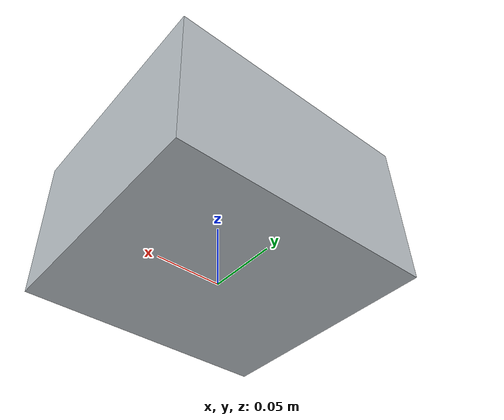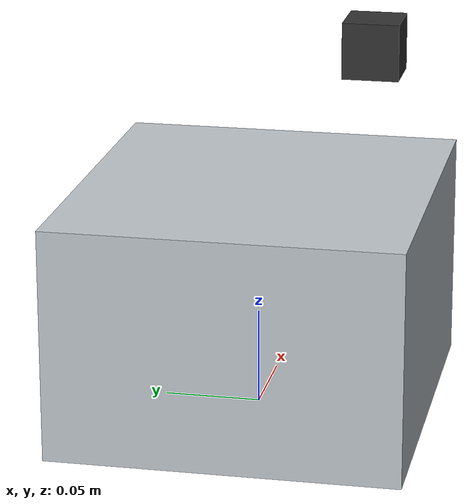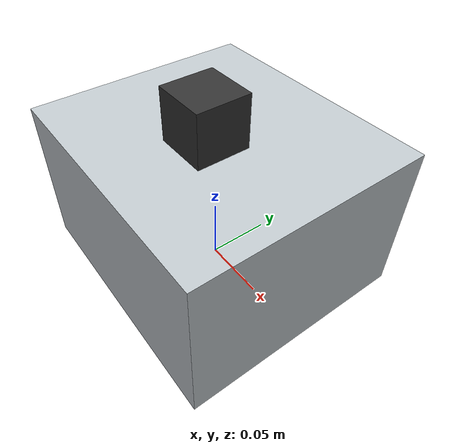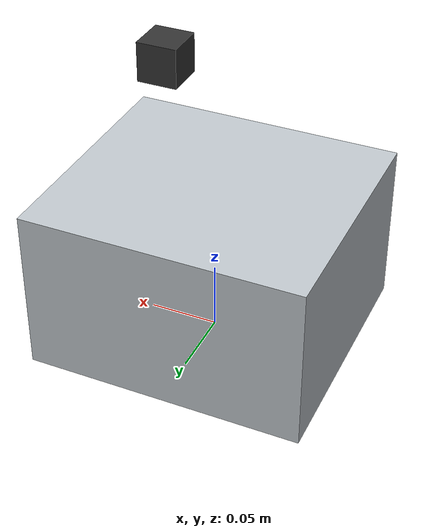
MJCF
<?xml version="1.0" encoding="utf-8"?>
<mujoco model="microplate_stacker_eject">
  <compiler angle="radian" autolimits="true"/>
  <default>
    <default class="body"><geom contype="1" conaffinity="1"/></default>
  </default>
  <worldbody>
    <body name="base">
      <geom type="box" size="0.1 0.09 0.06" pos="0 0 0.06" rgba="0.75 0.78 0.8 1" class="body"/>
      <body name="part" pos="0.06 -0.05 0.18">
        <joint name="part_joint" type="slide" axis="0 0 1" range="-0.03 0.0" damping="1.0" frictionloss="0.3"/>
  <geom name="part_body" type="box" size="0.015 0.015 0.015" pos="0 0 0" rgba="0.2 0.2 0.2 1" class="body"/>
        <site name="grasp_site" pos="0 0 0" size="0.005" rgba="1 0 0 1" group="4"/>
      </body>
    </body>
  </worldbody>
</mujoco>
